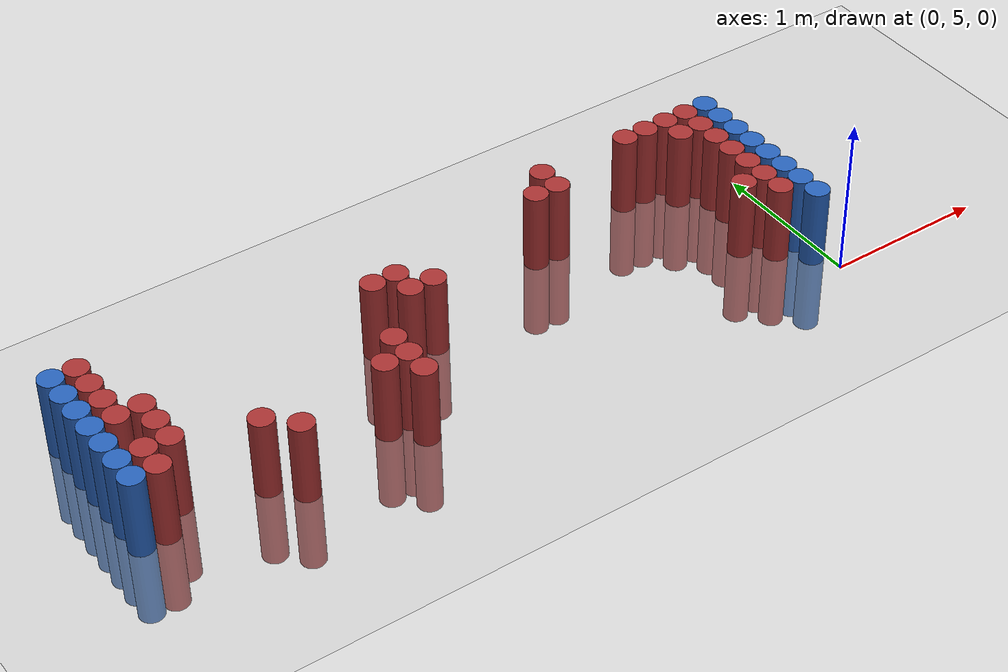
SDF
<sdf version="1.6">
 <world name="default">
  <model name="ground_plane">
   <static>1</static>
   <link name="link">
    <collision name="collision">
     <geometry><plane><normal>0 0 1</normal><size>100 100</size></plane></geometry>
     <surface><friction><ode><mu>100</mu><mu2>50</mu2></ode></friction></surface>
    </collision>
    <visual name="visual">
     <cast_shadows>0</cast_shadows>
     <geometry><plane><normal>0 0 1</normal><size>100 100</size></plane></geometry>
     <material>
      <script><uri>file://media/materials/scripts/gazebo.material</uri><name>Gazebo/Grey</name></script>
     </material>
    </visual>
   </link>
  </model>
  <model name="unit_cylinder_97">
   <static>1</static>
   <pose>-4.425000 5.325000 0.000000 0.000000 0.000000 0.000000</pose>
   <link name="link">
    <inertial>
     <mass>1</mass>
     <inertia><ixx>0.145833</ixx><ixy>0</ixy><ixz>0</ixz><iyy>0.145833</iyy><iyz>0</iyz><izz>0.125</izz></inertia>
    </inertial>
    <collision name="collision">
     <geometry><cylinder><radius>0.075000</radius><length>1</length></cylinder></geometry>
    </collision>
    <visual name="visual">
     <geometry><cylinder><radius>0.075000</radius><length>1</length></cylinder></geometry>
     <material>
      <ambient>0.152000 0.379000 0.720000 1</ambient>
      <diffuse>0.152000 0.379000 0.720000 1</diffuse>
     </material>
     <material>
      <script><name>Gazebo/Grey</name><uri>file://media/materials/scripts/gazebo.material</uri></script>
     </material>
    </visual>
   </link>
  </model>
  <model name="unit_cylinder_98">
   <static>1</static>
   <pose>-4.425000 5.475000 0.000000 0.000000 0.000000 0.000000</pose>
   <link name="link">
    <inertial>
     <mass>1</mass>
     <inertia><ixx>0.145833</ixx><ixy>0</ixy><ixz>0</ixz><iyy>0.145833</iyy><iyz>0</iyz><izz>0.125</izz></inertia>
    </inertial>
    <collision name="collision">
     <geometry><cylinder><radius>0.075000</radius><length>1</length></cylinder></geometry>
    </collision>
    <visual name="visual">
     <geometry><cylinder><radius>0.075000</radius><length>1</length></cylinder></geometry>
     <material>
      <ambient>0.152000 0.379000 0.720000 1</ambient>
      <diffuse>0.152000 0.379000 0.720000 1</diffuse>
     </material>
     <material>
      <script><name>Gazebo/Grey</name><uri>file://media/materials/scripts/gazebo.material</uri></script>
     </material>
    </visual>
   </link>
  </model>
  <model name="unit_cylinder_99">
   <static>1</static>
   <pose>-4.425000 5.625000 0.000000 0.000000 0.000000 0.000000</pose>
   <link name="link">
    <inertial>
     <mass>1</mass>
     <inertia><ixx>0.145833</ixx><ixy>0</ixy><ixz>0</ixz><iyy>0.145833</iyy><iyz>0</iyz><izz>0.125</izz></inertia>
    </inertial>
    <collision name="collision">
     <geometry><cylinder><radius>0.075000</radius><length>1</length></cylinder></geometry>
    </collision>
    <visual name="visual">
     <geometry><cylinder><radius>0.075000</radius><length>1</length></cylinder></geometry>
     <material>
      <ambient>0.152000 0.379000 0.720000 1</ambient>
      <diffuse>0.152000 0.379000 0.720000 1</diffuse>
     </material>
     <material>
      <script><name>Gazebo/Grey</name><uri>file://media/materials/scripts/gazebo.material</uri></script>
     </material>
    </visual>
   </link>
  </model>
  <model name="unit_cylinder_100">
   <static>1</static>
   <pose>-4.425000 5.775000 0.000000 0.000000 0.000000 0.000000</pose>
   <link name="link">
    <inertial>
     <mass>1</mass>
     <inertia><ixx>0.145833</ixx><ixy>0</ixy><ixz>0</ixz><iyy>0.145833</iyy><iyz>0</iyz><izz>0.125</izz></inertia>
    </inertial>
    <collision name="collision">
     <geometry><cylinder><radius>0.075000</radius><length>1</length></cylinder></geometry>
    </collision>
    <visual name="visual">
     <geometry><cylinder><radius>0.075000</radius><length>1</length></cylinder></geometry>
     <material>
      <ambient>0.152000 0.379000 0.720000 1</ambient>
      <diffuse>0.152000 0.379000 0.720000 1</diffuse>
     </material>
     <material>
      <script><name>Gazebo/Grey</name><uri>file://media/materials/scripts/gazebo.material</uri></script>
     </material>
    </visual>
   </link>
  </model>
  <model name="unit_cylinder_101">
   <static>1</static>
   <pose>-4.425000 5.925000 0.000000 0.000000 0.000000 0.000000</pose>
   <link name="link">
    <inertial>
     <mass>1</mass>
     <inertia><ixx>0.145833</ixx><ixy>0</ixy><ixz>0</ixz><iyy>0.145833</iyy><iyz>0</iyz><izz>0.125</izz></inertia>
    </inertial>
    <collision name="collision">
     <geometry><cylinder><radius>0.075000</radius><length>1</length></cylinder></geometry>
    </collision>
    <visual name="visual">
     <geometry><cylinder><radius>0.075000</radius><length>1</length></cylinder></geometry>
     <material>
      <ambient>0.152000 0.379000 0.720000 1</ambient>
      <diffuse>0.152000 0.379000 0.720000 1</diffuse>
     </material>
     <material>
      <script><name>Gazebo/Grey</name><uri>file://media/materials/scripts/gazebo.material</uri></script>
     </material>
    </visual>
   </link>
  </model>
  <model name="unit_cylinder_102">
   <static>1</static>
   <pose>-4.425000 6.075000 0.000000 0.000000 0.000000 0.000000</pose>
   <link name="link">
    <inertial>
     <mass>1</mass>
     <inertia><ixx>0.145833</ixx><ixy>0</ixy><ixz>0</ixz><iyy>0.145833</iyy><iyz>0</iyz><izz>0.125</izz></inertia>
    </inertial>
    <collision name="collision">
     <geometry><cylinder><radius>0.075000</radius><length>1</length></cylinder></geometry>
    </collision>
    <visual name="visual">
     <geometry><cylinder><radius>0.075000</radius><length>1</length></cylinder></geometry>
     <material>
      <ambient>0.152000 0.379000 0.720000 1</ambient>
      <diffuse>0.152000 0.379000 0.720000 1</diffuse>
     </material>
     <material>
      <script><name>Gazebo/Grey</name><uri>file://media/materials/scripts/gazebo.material</uri></script>
     </material>
    </visual>
   </link>
  </model>
  <model name="unit_cylinder_103">
   <static>1</static>
   <pose>-4.425000 6.225000 0.000000 0.000000 0.000000 0.000000</pose>
   <link name="link">
    <inertial>
     <mass>1</mass>
     <inertia><ixx>0.145833</ixx><ixy>0</ixy><ixz>0</ixz><iyy>0.145833</iyy><iyz>0</iyz><izz>0.125</izz></inertia>
    </inertial>
    <collision name="collision">
     <geometry><cylinder><radius>0.075000</radius><length>1</length></cylinder></geometry>
    </collision>
    <visual name="visual">
     <geometry><cylinder><radius>0.075000</radius><length>1</length></cylinder></geometry>
     <material>
      <ambient>0.152000 0.379000 0.720000 1</ambient>
      <diffuse>0.152000 0.379000 0.720000 1</diffuse>
     </material>
     <material>
      <script><name>Gazebo/Grey</name><uri>file://media/materials/scripts/gazebo.material</uri></script>
     </material>
    </visual>
   </link>
  </model>
  <model name="unit_cylinder_126">
   <static>1</static>
   <pose>-4.275000 5.325000 0.000000 0.000000 0.000000 0.000000</pose>
   <link name="link">
    <inertial>
     <mass>1</mass>
     <inertia><ixx>0.145833</ixx><ixy>0</ixy><ixz>0</ixz><iyy>0.145833</iyy><iyz>0</iyz><izz>0.125</izz></inertia>
    </inertial>
    <collision name="collision">
     <geometry><cylinder><radius>0.075000</radius><length>1</length></cylinder></geometry>
    </collision>
    <visual name="visual">
     <geometry><cylinder><radius>0.075000</radius><length>1</length></cylinder></geometry>
     <material>
      <ambient>0.648000 0.192000 0.192000 1</ambient>
      <diffuse>0.648000 0.192000 0.192000 1</diffuse>
     </material>
     <material>
      <script><name>Gazebo/Grey</name><uri>file://media/materials/scripts/gazebo.material</uri></script>
     </material>
    </visual>
   </link>
  </model>
  <model name="unit_cylinder_127">
   <static>1</static>
   <pose>-4.275000 5.475000 0.000000 0.000000 0.000000 0.000000</pose>
   <link name="link">
    <inertial>
     <mass>1</mass>
     <inertia><ixx>0.145833</ixx><ixy>0</ixy><ixz>0</ixz><iyy>0.145833</iyy><iyz>0</iyz><izz>0.125</izz></inertia>
    </inertial>
    <collision name="collision">
     <geometry><cylinder><radius>0.075000</radius><length>1</length></cylinder></geometry>
    </collision>
    <visual name="visual">
     <geometry><cylinder><radius>0.075000</radius><length>1</length></cylinder></geometry>
     <material>
      <ambient>0.648000 0.192000 0.192000 1</ambient>
      <diffuse>0.648000 0.192000 0.192000 1</diffuse>
     </material>
     <material>
      <script><name>Gazebo/Grey</name><uri>file://media/materials/scripts/gazebo.material</uri></script>
     </material>
    </visual>
   </link>
  </model>
  <model name="unit_cylinder_128">
   <static>1</static>
   <pose>-4.275000 5.775000 0.000000 0.000000 0.000000 0.000000</pose>
   <link name="link">
    <inertial>
     <mass>1</mass>
     <inertia><ixx>0.145833</ixx><ixy>0</ixy><ixz>0</ixz><iyy>0.145833</iyy><iyz>0</iyz><izz>0.125</izz></inertia>
    </inertial>
    <collision name="collision">
     <geometry><cylinder><radius>0.075000</radius><length>1</length></cylinder></geometry>
    </collision>
    <visual name="visual">
     <geometry><cylinder><radius>0.075000</radius><length>1</length></cylinder></geometry>
     <material>
      <ambient>0.648000 0.192000 0.192000 1</ambient>
      <diffuse>0.648000 0.192000 0.192000 1</diffuse>
     </material>
     <material>
      <script><name>Gazebo/Grey</name><uri>file://media/materials/scripts/gazebo.material</uri></script>
     </material>
    </visual>
   </link>
  </model>
  <model name="unit_cylinder_129">
   <static>1</static>
   <pose>-4.275000 5.925000 0.000000 0.000000 0.000000 0.000000</pose>
   <link name="link">
    <inertial>
     <mass>1</mass>
     <inertia><ixx>0.145833</ixx><ixy>0</ixy><ixz>0</ixz><iyy>0.145833</iyy><iyz>0</iyz><izz>0.125</izz></inertia>
    </inertial>
    <collision name="collision">
     <geometry><cylinder><radius>0.075000</radius><length>1</length></cylinder></geometry>
    </collision>
    <visual name="visual">
     <geometry><cylinder><radius>0.075000</radius><length>1</length></cylinder></geometry>
     <material>
      <ambient>0.648000 0.192000 0.192000 1</ambient>
      <diffuse>0.648000 0.192000 0.192000 1</diffuse>
     </material>
     <material>
      <script><name>Gazebo/Grey</name><uri>file://media/materials/scripts/gazebo.material</uri></script>
     </material>
    </visual>
   </link>
  </model>
  <model name="unit_cylinder_130">
   <static>1</static>
   <pose>-4.275000 6.075000 0.000000 0.000000 0.000000 0.000000</pose>
   <link name="link">
    <inertial>
     <mass>1</mass>
     <inertia><ixx>0.145833</ixx><ixy>0</ixy><ixz>0</ixz><iyy>0.145833</iyy><iyz>0</iyz><izz>0.125</izz></inertia>
    </inertial>
    <collision name="collision">
     <geometry><cylinder><radius>0.075000</radius><length>1</length></cylinder></geometry>
    </collision>
    <visual name="visual">
     <geometry><cylinder><radius>0.075000</radius><length>1</length></cylinder></geometry>
     <material>
      <ambient>0.648000 0.192000 0.192000 1</ambient>
      <diffuse>0.648000 0.192000 0.192000 1</diffuse>
     </material>
     <material>
      <script><name>Gazebo/Grey</name><uri>file://media/materials/scripts/gazebo.material</uri></script>
     </material>
    </visual>
   </link>
  </model>
  <model name="unit_cylinder_131">
   <static>1</static>
   <pose>-4.275000 6.225000 0.000000 0.000000 0.000000 0.000000</pose>
   <link name="link">
    <inertial>
     <mass>1</mass>
     <inertia><ixx>0.145833</ixx><ixy>0</ixy><ixz>0</ixz><iyy>0.145833</iyy><iyz>0</iyz><izz>0.125</izz></inertia>
    </inertial>
    <collision name="collision">
     <geometry><cylinder><radius>0.075000</radius><length>1</length></cylinder></geometry>
    </collision>
    <visual name="visual">
     <geometry><cylinder><radius>0.075000</radius><length>1</length></cylinder></geometry>
     <material>
      <ambient>0.648000 0.192000 0.192000 1</ambient>
      <diffuse>0.648000 0.192000 0.192000 1</diffuse>
     </material>
     <material>
      <script><name>Gazebo/Grey</name><uri>file://media/materials/scripts/gazebo.material</uri></script>
     </material>
    </visual>
   </link>
  </model>
  <model name="unit_cylinder_135">
   <static>1</static>
   <pose>-4.125000 5.475000 0.000000 0.000000 0.000000 0.000000</pose>
   <link name="link">
    <inertial>
     <mass>1</mass>
     <inertia><ixx>0.145833</ixx><ixy>0</ixy><ixz>0</ixz><iyy>0.145833</iyy><iyz>0</iyz><izz>0.125</izz></inertia>
    </inertial>
    <collision name="collision">
     <geometry><cylinder><radius>0.075000</radius><length>1</length></cylinder></geometry>
    </collision>
    <visual name="visual">
     <geometry><cylinder><radius>0.075000</radius><length>1</length></cylinder></geometry>
     <material>
      <ambient>0.648000 0.192000 0.192000 1</ambient>
      <diffuse>0.648000 0.192000 0.192000 1</diffuse>
     </material>
     <material>
      <script><name>Gazebo/Grey</name><uri>file://media/materials/scripts/gazebo.material</uri></script>
     </material>
    </visual>
   </link>
  </model>
  <model name="unit_cylinder_136">
   <static>1</static>
   <pose>-4.125000 5.625000 0.000000 0.000000 0.000000 0.000000</pose>
   <link name="link">
    <inertial>
     <mass>1</mass>
     <inertia><ixx>0.145833</ixx><ixy>0</ixy><ixz>0</ixz><iyy>0.145833</iyy><iyz>0</iyz><izz>0.125</izz></inertia>
    </inertial>
    <collision name="collision">
     <geometry><cylinder><radius>0.075000</radius><length>1</length></cylinder></geometry>
    </collision>
    <visual name="visual">
     <geometry><cylinder><radius>0.075000</radius><length>1</length></cylinder></geometry>
     <material>
      <ambient>0.648000 0.192000 0.192000 1</ambient>
      <diffuse>0.648000 0.192000 0.192000 1</diffuse>
     </material>
     <material>
      <script><name>Gazebo/Grey</name><uri>file://media/materials/scripts/gazebo.material</uri></script>
     </material>
    </visual>
   </link>
  </model>
  <model name="unit_cylinder_137">
   <static>1</static>
   <pose>-4.125000 5.775000 0.000000 0.000000 0.000000 0.000000</pose>
   <link name="link">
    <inertial>
     <mass>1</mass>
     <inertia><ixx>0.145833</ixx><ixy>0</ixy><ixz>0</ixz><iyy>0.145833</iyy><iyz>0</iyz><izz>0.125</izz></inertia>
    </inertial>
    <collision name="collision">
     <geometry><cylinder><radius>0.075000</radius><length>1</length></cylinder></geometry>
    </collision>
    <visual name="visual">
     <geometry><cylinder><radius>0.075000</radius><length>1</length></cylinder></geometry>
     <material>
      <ambient>0.648000 0.192000 0.192000 1</ambient>
      <diffuse>0.648000 0.192000 0.192000 1</diffuse>
     </material>
     <material>
      <script><name>Gazebo/Grey</name><uri>file://media/materials/scripts/gazebo.material</uri></script>
     </material>
    </visual>
   </link>
  </model>
  <model name="unit_cylinder_139">
   <static>1</static>
   <pose>-3.675000 5.325000 0.000000 0.000000 0.000000 0.000000</pose>
   <link name="link">
    <inertial>
     <mass>1</mass>
     <inertia><ixx>0.145833</ixx><ixy>0</ixy><ixz>0</ixz><iyy>0.145833</iyy><iyz>0</iyz><izz>0.125</izz></inertia>
    </inertial>
    <collision name="collision">
     <geometry><cylinder><radius>0.075000</radius><length>1</length></cylinder></geometry>
    </collision>
    <visual name="visual">
     <geometry><cylinder><radius>0.075000</radius><length>1</length></cylinder></geometry>
     <material>
      <ambient>0.648000 0.192000 0.192000 1</ambient>
      <diffuse>0.648000 0.192000 0.192000 1</diffuse>
     </material>
     <material>
      <script><name>Gazebo/Grey</name><uri>file://media/materials/scripts/gazebo.material</uri></script>
     </material>
    </visual>
   </link>
  </model>
  <model name="unit_cylinder_141">
   <static>1</static>
   <pose>-3.525000 5.175000 0.000000 0.000000 0.000000 0.000000</pose>
   <link name="link">
    <inertial>
     <mass>1</mass>
     <inertia><ixx>0.145833</ixx><ixy>0</ixy><ixz>0</ixz><iyy>0.145833</iyy><iyz>0</iyz><izz>0.125</izz></inertia>
    </inertial>
    <collision name="collision">
     <geometry><cylinder><radius>0.075000</radius><length>1</length></cylinder></geometry>
    </collision>
    <visual name="visual">
     <geometry><cylinder><radius>0.075000</radius><length>1</length></cylinder></geometry>
     <material>
      <ambient>0.648000 0.192000 0.192000 1</ambient>
      <diffuse>0.648000 0.192000 0.192000 1</diffuse>
     </material>
     <material>
      <script><name>Gazebo/Grey</name><uri>file://media/materials/scripts/gazebo.material</uri></script>
     </material>
    </visual>
   </link>
  </model>
  <model name="unit_cylinder_150">
   <static>1</static>
   <pose>-2.925000 5.325000 0.000000 0.000000 0.000000 0.000000</pose>
   <link name="link">
    <inertial>
     <mass>1</mass>
     <inertia><ixx>0.145833</ixx><ixy>0</ixy><ixz>0</ixz><iyy>0.145833</iyy><iyz>0</iyz><izz>0.125</izz></inertia>
    </inertial>
    <collision name="collision">
     <geometry><cylinder><radius>0.075000</radius><length>1</length></cylinder></geometry>
    </collision>
    <visual name="visual">
     <geometry><cylinder><radius>0.075000</radius><length>1</length></cylinder></geometry>
     <material>
      <ambient>0.648000 0.192000 0.192000 1</ambient>
      <diffuse>0.648000 0.192000 0.192000 1</diffuse>
     </material>
     <material>
      <script><name>Gazebo/Grey</name><uri>file://media/materials/scripts/gazebo.material</uri></script>
     </material>
    </visual>
   </link>
  </model>
  <model name="unit_cylinder_151">
   <static>1</static>
   <pose>-2.775000 5.175000 0.000000 0.000000 0.000000 0.000000</pose>
   <link name="link">
    <inertial>
     <mass>1</mass>
     <inertia><ixx>0.145833</ixx><ixy>0</ixy><ixz>0</ixz><iyy>0.145833</iyy><iyz>0</iyz><izz>0.125</izz></inertia>
    </inertial>
    <collision name="collision">
     <geometry><cylinder><radius>0.075000</radius><length>1</length></cylinder></geometry>
    </collision>
    <visual name="visual">
     <geometry><cylinder><radius>0.075000</radius><length>1</length></cylinder></geometry>
     <material>
      <ambient>0.648000 0.192000 0.192000 1</ambient>
      <diffuse>0.648000 0.192000 0.192000 1</diffuse>
     </material>
     <material>
      <script><name>Gazebo/Grey</name><uri>file://media/materials/scripts/gazebo.material</uri></script>
     </material>
    </visual>
   </link>
  </model>
  <model name="unit_cylinder_152">
   <static>1</static>
   <pose>-2.775000 5.325000 0.000000 0.000000 0.000000 0.000000</pose>
   <link name="link">
    <inertial>
     <mass>1</mass>
     <inertia><ixx>0.145833</ixx><ixy>0</ixy><ixz>0</ixz><iyy>0.145833</iyy><iyz>0</iyz><izz>0.125</izz></inertia>
    </inertial>
    <collision name="collision">
     <geometry><cylinder><radius>0.075000</radius><length>1</length></cylinder></geometry>
    </collision>
    <visual name="visual">
     <geometry><cylinder><radius>0.075000</radius><length>1</length></cylinder></geometry>
     <material>
      <ambient>0.648000 0.192000 0.192000 1</ambient>
      <diffuse>0.648000 0.192000 0.192000 1</diffuse>
     </material>
     <material>
      <script><name>Gazebo/Grey</name><uri>file://media/materials/scripts/gazebo.material</uri></script>
     </material>
    </visual>
   </link>
  </model>
  <model name="unit_cylinder_153">
   <static>1</static>
   <pose>-2.775000 5.475000 0.000000 0.000000 0.000000 0.000000</pose>
   <link name="link">
    <inertial>
     <mass>1</mass>
     <inertia><ixx>0.145833</ixx><ixy>0</ixy><ixz>0</ixz><iyy>0.145833</iyy><iyz>0</iyz><izz>0.125</izz></inertia>
    </inertial>
    <collision name="collision">
     <geometry><cylinder><radius>0.075000</radius><length>1</length></cylinder></geometry>
    </collision>
    <visual name="visual">
     <geometry><cylinder><radius>0.075000</radius><length>1</length></cylinder></geometry>
     <material>
      <ambient>0.648000 0.192000 0.192000 1</ambient>
      <diffuse>0.648000 0.192000 0.192000 1</diffuse>
     </material>
     <material>
      <script><name>Gazebo/Grey</name><uri>file://media/materials/scripts/gazebo.material</uri></script>
     </material>
    </visual>
   </link>
  </model>
  <model name="unit_cylinder_156">
   <static>1</static>
   <pose>-2.625000 5.925000 0.000000 0.000000 0.000000 0.000000</pose>
   <link name="link">
    <inertial>
     <mass>1</mass>
     <inertia><ixx>0.145833</ixx><ixy>0</ixy><ixz>0</ixz><iyy>0.145833</iyy><iyz>0</iyz><izz>0.125</izz></inertia>
    </inertial>
    <collision name="collision">
     <geometry><cylinder><radius>0.075000</radius><length>1</length></cylinder></geometry>
    </collision>
    <visual name="visual">
     <geometry><cylinder><radius>0.075000</radius><length>1</length></cylinder></geometry>
     <material>
      <ambient>0.648000 0.192000 0.192000 1</ambient>
      <diffuse>0.648000 0.192000 0.192000 1</diffuse>
     </material>
     <material>
      <script><name>Gazebo/Grey</name><uri>file://media/materials/scripts/gazebo.material</uri></script>
     </material>
    </visual>
   </link>
  </model>
  <model name="unit_cylinder_159">
   <static>1</static>
   <pose>-2.475000 5.775000 0.000000 0.000000 0.000000 0.000000</pose>
   <link name="link">
    <inertial>
     <mass>1</mass>
     <inertia><ixx>0.145833</ixx><ixy>0</ixy><ixz>0</ixz><iyy>0.145833</iyy><iyz>0</iyz><izz>0.125</izz></inertia>
    </inertial>
    <collision name="collision">
     <geometry><cylinder><radius>0.075000</radius><length>1</length></cylinder></geometry>
    </collision>
    <visual name="visual">
     <geometry><cylinder><radius>0.075000</radius><length>1</length></cylinder></geometry>
     <material>
      <ambient>0.648000 0.192000 0.192000 1</ambient>
      <diffuse>0.648000 0.192000 0.192000 1</diffuse>
     </material>
     <material>
      <script><name>Gazebo/Grey</name><uri>file://media/materials/scripts/gazebo.material</uri></script>
     </material>
    </visual>
   </link>
  </model>
  <model name="unit_cylinder_160">
   <static>1</static>
   <pose>-2.475000 5.925000 0.000000 0.000000 0.000000 0.000000</pose>
   <link name="link">
    <inertial>
     <mass>1</mass>
     <inertia><ixx>0.145833</ixx><ixy>0</ixy><ixz>0</ixz><iyy>0.145833</iyy><iyz>0</iyz><izz>0.125</izz></inertia>
    </inertial>
    <collision name="collision">
     <geometry><cylinder><radius>0.075000</radius><length>1</length></cylinder></geometry>
    </collision>
    <visual name="visual">
     <geometry><cylinder><radius>0.075000</radius><length>1</length></cylinder></geometry>
     <material>
      <ambient>0.648000 0.192000 0.192000 1</ambient>
      <diffuse>0.648000 0.192000 0.192000 1</diffuse>
     </material>
     <material>
      <script><name>Gazebo/Grey</name><uri>file://media/materials/scripts/gazebo.material</uri></script>
     </material>
    </visual>
   </link>
  </model>
  <model name="unit_cylinder_161">
   <static>1</static>
   <pose>-2.325000 5.775000 0.000000 0.000000 0.000000 0.000000</pose>
   <link name="link">
    <inertial>
     <mass>1</mass>
     <inertia><ixx>0.145833</ixx><ixy>0</ixy><ixz>0</ixz><iyy>0.145833</iyy><iyz>0</iyz><izz>0.125</izz></inertia>
    </inertial>
    <collision name="collision">
     <geometry><cylinder><radius>0.075000</radius><length>1</length></cylinder></geometry>
    </collision>
    <visual name="visual">
     <geometry><cylinder><radius>0.075000</radius><length>1</length></cylinder></geometry>
     <material>
      <ambient>0.648000 0.192000 0.192000 1</ambient>
      <diffuse>0.648000 0.192000 0.192000 1</diffuse>
     </material>
     <material>
      <script><name>Gazebo/Grey</name><uri>file://media/materials/scripts/gazebo.material</uri></script>
     </material>
    </visual>
   </link>
  </model>
  <model name="unit_cylinder_172">
   <static>1</static>
   <pose>-1.425000 6.075000 0.000000 0.000000 0.000000 0.000000</pose>
   <link name="link">
    <inertial>
     <mass>1</mass>
     <inertia><ixx>0.145833</ixx><ixy>0</ixy><ixz>0</ixz><iyy>0.145833</iyy><iyz>0</iyz><izz>0.125</izz></inertia>
    </inertial>
    <collision name="collision">
     <geometry><cylinder><radius>0.075000</radius><length>1</length></cylinder></geometry>
    </collision>
    <visual name="visual">
     <geometry><cylinder><radius>0.075000</radius><length>1</length></cylinder></geometry>
     <material>
      <ambient>0.648000 0.192000 0.192000 1</ambient>
      <diffuse>0.648000 0.192000 0.192000 1</diffuse>
     </material>
     <material>
      <script><name>Gazebo/Grey</name><uri>file://media/materials/scripts/gazebo.material</uri></script>
     </material>
    </visual>
   </link>
  </model>
  <model name="unit_cylinder_175">
   <static>1</static>
   <pose>-1.275000 6.075000 0.000000 0.000000 0.000000 0.000000</pose>
   <link name="link">
    <inertial>
     <mass>1</mass>
     <inertia><ixx>0.145833</ixx><ixy>0</ixy><ixz>0</ixz><iyy>0.145833</iyy><iyz>0</iyz><izz>0.125</izz></inertia>
    </inertial>
    <collision name="collision">
     <geometry><cylinder><radius>0.075000</radius><length>1</length></cylinder></geometry>
    </collision>
    <visual name="visual">
     <geometry><cylinder><radius>0.075000</radius><length>1</length></cylinder></geometry>
     <material>
      <ambient>0.648000 0.192000 0.192000 1</ambient>
      <diffuse>0.648000 0.192000 0.192000 1</diffuse>
     </material>
     <material>
      <script><name>Gazebo/Grey</name><uri>file://media/materials/scripts/gazebo.material</uri></script>
     </material>
    </visual>
   </link>
  </model>
  <model name="unit_cylinder_176">
   <static>1</static>
   <pose>-1.275000 6.225000 0.000000 0.000000 0.000000 0.000000</pose>
   <link name="link">
    <inertial>
     <mass>1</mass>
     <inertia><ixx>0.145833</ixx><ixy>0</ixy><ixz>0</ixz><iyy>0.145833</iyy><iyz>0</iyz><izz>0.125</izz></inertia>
    </inertial>
    <collision name="collision">
     <geometry><cylinder><radius>0.075000</radius><length>1</length></cylinder></geometry>
    </collision>
    <visual name="visual">
     <geometry><cylinder><radius>0.075000</radius><length>1</length></cylinder></geometry>
     <material>
      <ambient>0.648000 0.192000 0.192000 1</ambient>
      <diffuse>0.648000 0.192000 0.192000 1</diffuse>
     </material>
     <material>
      <script><name>Gazebo/Grey</name><uri>file://media/materials/scripts/gazebo.material</uri></script>
     </material>
    </visual>
   </link>
  </model>
  <model name="unit_cylinder_179">
   <static>1</static>
   <pose>-0.675000 6.225000 0.000000 0.000000 0.000000 0.000000</pose>
   <link name="link">
    <inertial>
     <mass>1</mass>
     <inertia><ixx>0.145833</ixx><ixy>0</ixy><ixz>0</ixz><iyy>0.145833</iyy><iyz>0</iyz><izz>0.125</izz></inertia>
    </inertial>
    <collision name="collision">
     <geometry><cylinder><radius>0.075000</radius><length>1</length></cylinder></geometry>
    </collision>
    <visual name="visual">
     <geometry><cylinder><radius>0.075000</radius><length>1</length></cylinder></geometry>
     <material>
      <ambient>0.648000 0.192000 0.192000 1</ambient>
      <diffuse>0.648000 0.192000 0.192000 1</diffuse>
     </material>
     <material>
      <script><name>Gazebo/Grey</name><uri>file://media/materials/scripts/gazebo.material</uri></script>
     </material>
    </visual>
   </link>
  </model>
  <model name="unit_cylinder_183">
   <static>1</static>
   <pose>-0.525000 6.225000 0.000000 0.000000 0.000000 0.000000</pose>
   <link name="link">
    <inertial>
     <mass>1</mass>
     <inertia><ixx>0.145833</ixx><ixy>0</ixy><ixz>0</ixz><iyy>0.145833</iyy><iyz>0</iyz><izz>0.125</izz></inertia>
    </inertial>
    <collision name="collision">
     <geometry><cylinder><radius>0.075000</radius><length>1</length></cylinder></geometry>
    </collision>
    <visual name="visual">
     <geometry><cylinder><radius>0.075000</radius><length>1</length></cylinder></geometry>
     <material>
      <ambient>0.648000 0.192000 0.192000 1</ambient>
      <diffuse>0.648000 0.192000 0.192000 1</diffuse>
     </material>
     <material>
      <script><name>Gazebo/Grey</name><uri>file://media/materials/scripts/gazebo.material</uri></script>
     </material>
    </visual>
   </link>
  </model>
  <model name="unit_cylinder_186">
   <static>1</static>
   <pose>-0.375000 5.475000 0.000000 0.000000 0.000000 0.000000</pose>
   <link name="link">
    <inertial>
     <mass>1</mass>
     <inertia><ixx>0.145833</ixx><ixy>0</ixy><ixz>0</ixz><iyy>0.145833</iyy><iyz>0</iyz><izz>0.125</izz></inertia>
    </inertial>
    <collision name="collision">
     <geometry><cylinder><radius>0.075000</radius><length>1</length></cylinder></geometry>
    </collision>
    <visual name="visual">
     <geometry><cylinder><radius>0.075000</radius><length>1</length></cylinder></geometry>
     <material>
      <ambient>0.648000 0.192000 0.192000 1</ambient>
      <diffuse>0.648000 0.192000 0.192000 1</diffuse>
     </material>
     <material>
      <script><name>Gazebo/Grey</name><uri>file://media/materials/scripts/gazebo.material</uri></script>
     </material>
    </visual>
   </link>
  </model>
  <model name="unit_cylinder_187">
   <static>1</static>
   <pose>-0.375000 6.075000 0.000000 0.000000 0.000000 0.000000</pose>
   <link name="link">
    <inertial>
     <mass>1</mass>
     <inertia><ixx>0.145833</ixx><ixy>0</ixy><ixz>0</ixz><iyy>0.145833</iyy><iyz>0</iyz><izz>0.125</izz></inertia>
    </inertial>
    <collision name="collision">
     <geometry><cylinder><radius>0.075000</radius><length>1</length></cylinder></geometry>
    </collision>
    <visual name="visual">
     <geometry><cylinder><radius>0.075000</radius><length>1</length></cylinder></geometry>
     <material>
      <ambient>0.648000 0.192000 0.192000 1</ambient>
      <diffuse>0.648000 0.192000 0.192000 1</diffuse>
     </material>
     <material>
      <script><name>Gazebo/Grey</name><uri>file://media/materials/scripts/gazebo.material</uri></script>
     </material>
    </visual>
   </link>
  </model>
  <model name="unit_cylinder_188">
   <static>1</static>
   <pose>-0.375000 6.225000 0.000000 0.000000 0.000000 0.000000</pose>
   <link name="link">
    <inertial>
     <mass>1</mass>
     <inertia><ixx>0.145833</ixx><ixy>0</ixy><ixz>0</ixz><iyy>0.145833</iyy><iyz>0</iyz><izz>0.125</izz></inertia>
    </inertial>
    <collision name="collision">
     <geometry><cylinder><radius>0.075000</radius><length>1</length></cylinder></geometry>
    </collision>
    <visual name="visual">
     <geometry><cylinder><radius>0.075000</radius><length>1</length></cylinder></geometry>
     <material>
      <ambient>0.648000 0.192000 0.192000 1</ambient>
      <diffuse>0.648000 0.192000 0.192000 1</diffuse>
     </material>
     <material>
      <script><name>Gazebo/Grey</name><uri>file://media/materials/scripts/gazebo.material</uri></script>
     </material>
    </visual>
   </link>
  </model>
  <model name="unit_cylinder_193">
   <static>1</static>
   <pose>-0.225000 5.325000 0.000000 0.000000 0.000000 0.000000</pose>
   <link name="link">
    <inertial>
     <mass>1</mass>
     <inertia><ixx>0.145833</ixx><ixy>0</ixy><ixz>0</ixz><iyy>0.145833</iyy><iyz>0</iyz><izz>0.125</izz></inertia>
    </inertial>
    <collision name="collision">
     <geometry><cylinder><radius>0.075000</radius><length>1</length></cylinder></geometry>
    </collision>
    <visual name="visual">
     <geometry><cylinder><radius>0.075000</radius><length>1</length></cylinder></geometry>
     <material>
      <ambient>0.648000 0.192000 0.192000 1</ambient>
      <diffuse>0.648000 0.192000 0.192000 1</diffuse>
     </material>
     <material>
      <script><name>Gazebo/Grey</name><uri>file://media/materials/scripts/gazebo.material</uri></script>
     </material>
    </visual>
   </link>
  </model>
  <model name="unit_cylinder_194">
   <static>1</static>
   <pose>-0.225000 5.475000 0.000000 0.000000 0.000000 0.000000</pose>
   <link name="link">
    <inertial>
     <mass>1</mass>
     <inertia><ixx>0.145833</ixx><ixy>0</ixy><ixz>0</ixz><iyy>0.145833</iyy><iyz>0</iyz><izz>0.125</izz></inertia>
    </inertial>
    <collision name="collision">
     <geometry><cylinder><radius>0.075000</radius><length>1</length></cylinder></geometry>
    </collision>
    <visual name="visual">
     <geometry><cylinder><radius>0.075000</radius><length>1</length></cylinder></geometry>
     <material>
      <ambient>0.648000 0.192000 0.192000 1</ambient>
      <diffuse>0.648000 0.192000 0.192000 1</diffuse>
     </material>
     <material>
      <script><name>Gazebo/Grey</name><uri>file://media/materials/scripts/gazebo.material</uri></script>
     </material>
    </visual>
   </link>
  </model>
  <model name="unit_cylinder_195">
   <static>1</static>
   <pose>-0.225000 5.625000 0.000000 0.000000 0.000000 0.000000</pose>
   <link name="link">
    <inertial>
     <mass>1</mass>
     <inertia><ixx>0.145833</ixx><ixy>0</ixy><ixz>0</ixz><iyy>0.145833</iyy><iyz>0</iyz><izz>0.125</izz></inertia>
    </inertial>
    <collision name="collision">
     <geometry><cylinder><radius>0.075000</radius><length>1</length></cylinder></geometry>
    </collision>
    <visual name="visual">
     <geometry><cylinder><radius>0.075000</radius><length>1</length></cylinder></geometry>
     <material>
      <ambient>0.648000 0.192000 0.192000 1</ambient>
      <diffuse>0.648000 0.192000 0.192000 1</diffuse>
     </material>
     <material>
      <script><name>Gazebo/Grey</name><uri>file://media/materials/scripts/gazebo.material</uri></script>
     </material>
    </visual>
   </link>
  </model>
  <model name="unit_cylinder_196">
   <static>1</static>
   <pose>-0.225000 5.775000 0.000000 0.000000 0.000000 0.000000</pose>
   <link name="link">
    <inertial>
     <mass>1</mass>
     <inertia><ixx>0.145833</ixx><ixy>0</ixy><ixz>0</ixz><iyy>0.145833</iyy><iyz>0</iyz><izz>0.125</izz></inertia>
    </inertial>
    <collision name="collision">
     <geometry><cylinder><radius>0.075000</radius><length>1</length></cylinder></geometry>
    </collision>
    <visual name="visual">
     <geometry><cylinder><radius>0.075000</radius><length>1</length></cylinder></geometry>
     <material>
      <ambient>0.648000 0.192000 0.192000 1</ambient>
      <diffuse>0.648000 0.192000 0.192000 1</diffuse>
     </material>
     <material>
      <script><name>Gazebo/Grey</name><uri>file://media/materials/scripts/gazebo.material</uri></script>
     </material>
    </visual>
   </link>
  </model>
  <model name="unit_cylinder_197">
   <static>1</static>
   <pose>-0.225000 5.925000 0.000000 0.000000 0.000000 0.000000</pose>
   <link name="link">
    <inertial>
     <mass>1</mass>
     <inertia><ixx>0.145833</ixx><ixy>0</ixy><ixz>0</ixz><iyy>0.145833</iyy><iyz>0</iyz><izz>0.125</izz></inertia>
    </inertial>
    <collision name="collision">
     <geometry><cylinder><radius>0.075000</radius><length>1</length></cylinder></geometry>
    </collision>
    <visual name="visual">
     <geometry><cylinder><radius>0.075000</radius><length>1</length></cylinder></geometry>
     <material>
      <ambient>0.648000 0.192000 0.192000 1</ambient>
      <diffuse>0.648000 0.192000 0.192000 1</diffuse>
     </material>
     <material>
      <script><name>Gazebo/Grey</name><uri>file://media/materials/scripts/gazebo.material</uri></script>
     </material>
    </visual>
   </link>
  </model>
  <model name="unit_cylinder_198">
   <static>1</static>
   <pose>-0.225000 6.075000 0.000000 0.000000 0.000000 0.000000</pose>
   <link name="link">
    <inertial>
     <mass>1</mass>
     <inertia><ixx>0.145833</ixx><ixy>0</ixy><ixz>0</ixz><iyy>0.145833</iyy><iyz>0</iyz><izz>0.125</izz></inertia>
    </inertial>
    <collision name="collision">
     <geometry><cylinder><radius>0.075000</radius><length>1</length></cylinder></geometry>
    </collision>
    <visual name="visual">
     <geometry><cylinder><radius>0.075000</radius><length>1</length></cylinder></geometry>
     <material>
      <ambient>0.648000 0.192000 0.192000 1</ambient>
      <diffuse>0.648000 0.192000 0.192000 1</diffuse>
     </material>
     <material>
      <script><name>Gazebo/Grey</name><uri>file://media/materials/scripts/gazebo.material</uri></script>
     </material>
    </visual>
   </link>
  </model>
  <model name="unit_cylinder_199">
   <static>1</static>
   <pose>-0.225000 6.225000 0.000000 0.000000 0.000000 0.000000</pose>
   <link name="link">
    <inertial>
     <mass>1</mass>
     <inertia><ixx>0.145833</ixx><ixy>0</ixy><ixz>0</ixz><iyy>0.145833</iyy><iyz>0</iyz><izz>0.125</izz></inertia>
    </inertial>
    <collision name="collision">
     <geometry><cylinder><radius>0.075000</radius><length>1</length></cylinder></geometry>
    </collision>
    <visual name="visual">
     <geometry><cylinder><radius>0.075000</radius><length>1</length></cylinder></geometry>
     <material>
      <ambient>0.648000 0.192000 0.192000 1</ambient>
      <diffuse>0.648000 0.192000 0.192000 1</diffuse>
     </material>
     <material>
      <script><name>Gazebo/Grey</name><uri>file://media/materials/scripts/gazebo.material</uri></script>
     </material>
    </visual>
   </link>
  </model>
  <model name="unit_cylinder_214">
   <static>1</static>
   <pose>-0.075000 5.175000 0.000000 0.000000 0.000000 0.000000</pose>
   <link name="link">
    <inertial>
     <mass>1</mass>
     <inertia><ixx>0.145833</ixx><ixy>0</ixy><ixz>0</ixz><iyy>0.145833</iyy><iyz>0</iyz><izz>0.125</izz></inertia>
    </inertial>
    <collision name="collision">
     <geometry><cylinder><radius>0.075000</radius><length>1</length></cylinder></geometry>
    </collision>
    <visual name="visual">
     <geometry><cylinder><radius>0.075000</radius><length>1</length></cylinder></geometry>
     <material>
      <ambient>0.152000 0.379000 0.720000 1</ambient>
      <diffuse>0.152000 0.379000 0.720000 1</diffuse>
     </material>
     <material>
      <script><name>Gazebo/Grey</name><uri>file://media/materials/scripts/gazebo.material</uri></script>
     </material>
    </visual>
   </link>
  </model>
  <model name="unit_cylinder_215">
   <static>1</static>
   <pose>-0.075000 5.325000 0.000000 0.000000 0.000000 0.000000</pose>
   <link name="link">
    <inertial>
     <mass>1</mass>
     <inertia><ixx>0.145833</ixx><ixy>0</ixy><ixz>0</ixz><iyy>0.145833</iyy><iyz>0</iyz><izz>0.125</izz></inertia>
    </inertial>
    <collision name="collision">
     <geometry><cylinder><radius>0.075000</radius><length>1</length></cylinder></geometry>
    </collision>
    <visual name="visual">
     <geometry><cylinder><radius>0.075000</radius><length>1</length></cylinder></geometry>
     <material>
      <ambient>0.152000 0.379000 0.720000 1</ambient>
      <diffuse>0.152000 0.379000 0.720000 1</diffuse>
     </material>
     <material>
      <script><name>Gazebo/Grey</name><uri>file://media/materials/scripts/gazebo.material</uri></script>
     </material>
    </visual>
   </link>
  </model>
  <model name="unit_cylinder_216">
   <static>1</static>
   <pose>-0.075000 5.475000 0.000000 0.000000 0.000000 0.000000</pose>
   <link name="link">
    <inertial>
     <mass>1</mass>
     <inertia><ixx>0.145833</ixx><ixy>0</ixy><ixz>0</ixz><iyy>0.145833</iyy><iyz>0</iyz><izz>0.125</izz></inertia>
    </inertial>
    <collision name="collision">
     <geometry><cylinder><radius>0.075000</radius><length>1</length></cylinder></geometry>
    </collision>
    <visual name="visual">
     <geometry><cylinder><radius>0.075000</radius><length>1</length></cylinder></geometry>
     <material>
      <ambient>0.152000 0.379000 0.720000 1</ambient>
      <diffuse>0.152000 0.379000 0.720000 1</diffuse>
     </material>
     <material>
      <script><name>Gazebo/Grey</name><uri>file://media/materials/scripts/gazebo.material</uri></script>
     </material>
    </visual>
   </link>
  </model>
  <model name="unit_cylinder_217">
   <static>1</static>
   <pose>-0.075000 5.625000 0.000000 0.000000 0.000000 0.000000</pose>
   <link name="link">
    <inertial>
     <mass>1</mass>
     <inertia><ixx>0.145833</ixx><ixy>0</ixy><ixz>0</ixz><iyy>0.145833</iyy><iyz>0</iyz><izz>0.125</izz></inertia>
    </inertial>
    <collision name="collision">
     <geometry><cylinder><radius>0.075000</radius><length>1</length></cylinder></geometry>
    </collision>
    <visual name="visual">
     <geometry><cylinder><radius>0.075000</radius><length>1</length></cylinder></geometry>
     <material>
      <ambient>0.152000 0.379000 0.720000 1</ambient>
      <diffuse>0.152000 0.379000 0.720000 1</diffuse>
     </material>
     <material>
      <script><name>Gazebo/Grey</name><uri>file://media/materials/scripts/gazebo.material</uri></script>
     </material>
    </visual>
   </link>
  </model>
  <model name="unit_cylinder_218">
   <static>1</static>
   <pose>-0.075000 5.775000 0.000000 0.000000 0.000000 0.000000</pose>
   <link name="link">
    <inertial>
     <mass>1</mass>
     <inertia><ixx>0.145833</ixx><ixy>0</ixy><ixz>0</ixz><iyy>0.145833</iyy><iyz>0</iyz><izz>0.125</izz></inertia>
    </inertial>
    <collision name="collision">
     <geometry><cylinder><radius>0.075000</radius><length>1</length></cylinder></geometry>
    </collision>
    <visual name="visual">
     <geometry><cylinder><radius>0.075000</radius><length>1</length></cylinder></geometry>
     <material>
      <ambient>0.152000 0.379000 0.720000 1</ambient>
      <diffuse>0.152000 0.379000 0.720000 1</diffuse>
     </material>
     <material>
      <script><name>Gazebo/Grey</name><uri>file://media/materials/scripts/gazebo.material</uri></script>
     </material>
    </visual>
   </link>
  </model>
  <model name="unit_cylinder_219">
   <static>1</static>
   <pose>-0.075000 5.925000 0.000000 0.000000 0.000000 0.000000</pose>
   <link name="link">
    <inertial>
     <mass>1</mass>
     <inertia><ixx>0.145833</ixx><ixy>0</ixy><ixz>0</ixz><iyy>0.145833</iyy><iyz>0</iyz><izz>0.125</izz></inertia>
    </inertial>
    <collision name="collision">
     <geometry><cylinder><radius>0.075000</radius><length>1</length></cylinder></geometry>
    </collision>
    <visual name="visual">
     <geometry><cylinder><radius>0.075000</radius><length>1</length></cylinder></geometry>
     <material>
      <ambient>0.152000 0.379000 0.720000 1</ambient>
      <diffuse>0.152000 0.379000 0.720000 1</diffuse>
     </material>
     <material>
      <script><name>Gazebo/Grey</name><uri>file://media/materials/scripts/gazebo.material</uri></script>
     </material>
    </visual>
   </link>
  </model>
  <model name="unit_cylinder_220">
   <static>1</static>
   <pose>-0.075000 6.075000 0.000000 0.000000 0.000000 0.000000</pose>
   <link name="link">
    <inertial>
     <mass>1</mass>
     <inertia><ixx>0.145833</ixx><ixy>0</ixy><ixz>0</ixz><iyy>0.145833</iyy><iyz>0</iyz><izz>0.125</izz></inertia>
    </inertial>
    <collision name="collision">
     <geometry><cylinder><radius>0.075000</radius><length>1</length></cylinder></geometry>
    </collision>
    <visual name="visual">
     <geometry><cylinder><radius>0.075000</radius><length>1</length></cylinder></geometry>
     <material>
      <ambient>0.152000 0.379000 0.720000 1</ambient>
      <diffuse>0.152000 0.379000 0.720000 1</diffuse>
     </material>
     <material>
      <script><name>Gazebo/Grey</name><uri>file://media/materials/scripts/gazebo.material</uri></script>
     </material>
    </visual>
   </link>
  </model>
  <model name="unit_cylinder_221">
   <static>1</static>
   <pose>-0.075000 6.225000 0.000000 0.000000 0.000000 0.000000</pose>
   <link name="link">
    <inertial>
     <mass>1</mass>
     <inertia><ixx>0.145833</ixx><ixy>0</ixy><ixz>0</ixz><iyy>0.145833</iyy><iyz>0</iyz><izz>0.125</izz></inertia>
    </inertial>
    <collision name="collision">
     <geometry><cylinder><radius>0.075000</radius><length>1</length></cylinder></geometry>
    </collision>
    <visual name="visual">
     <geometry><cylinder><radius>0.075000</radius><length>1</length></cylinder></geometry>
     <material>
      <ambient>0.152000 0.379000 0.720000 1</ambient>
      <diffuse>0.152000 0.379000 0.720000 1</diffuse>
     </material>
     <material>
      <script><name>Gazebo/Grey</name><uri>file://media/materials/scripts/gazebo.material</uri></script>
     </material>
    </visual>
   </link>
  </model>
 </world>
</sdf>
